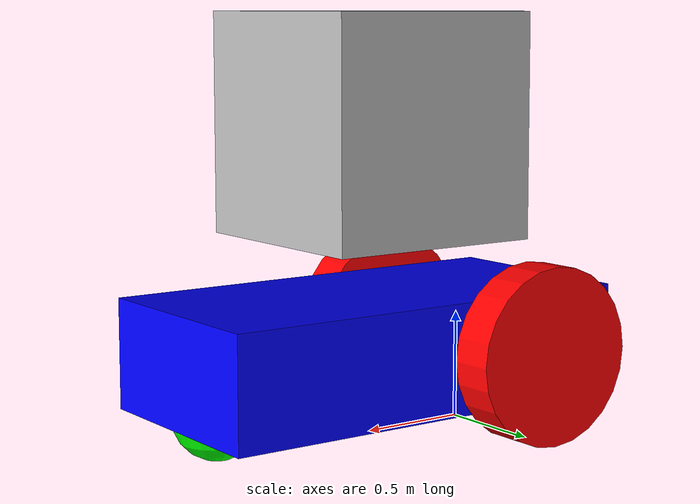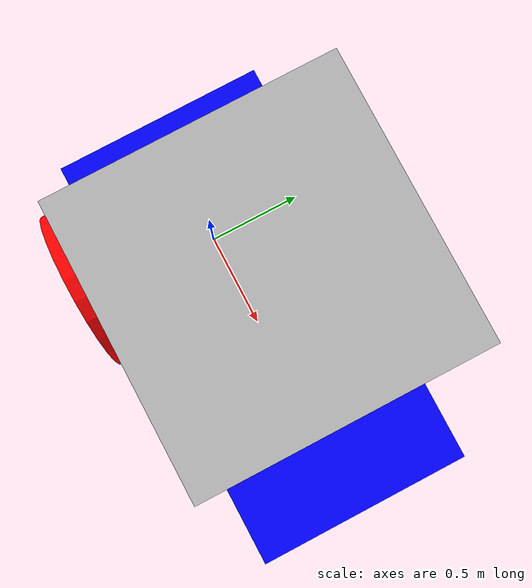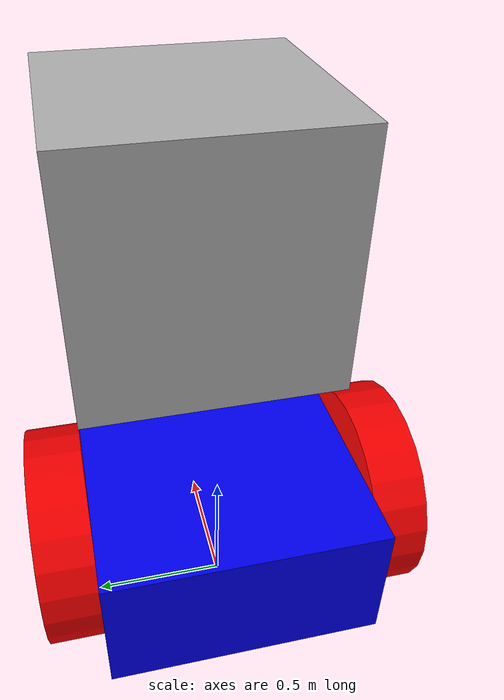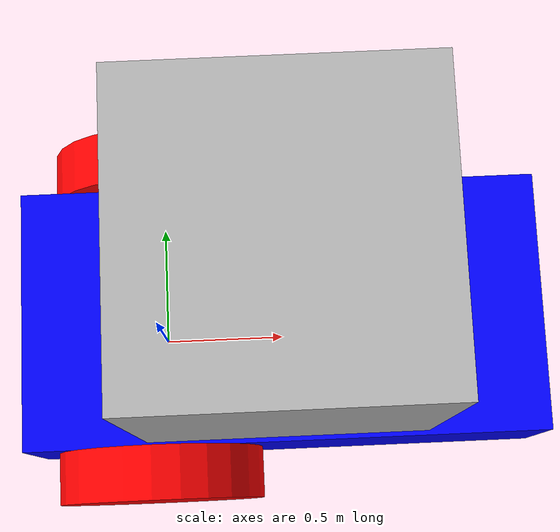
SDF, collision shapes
<sdf version="1.8">
            <model name='vehicle_blue' canonical_link='chassis'>
    	        <pose>0 0 0 0 0 0</pose>
	        <link name='chassis'>
                  <pose relative_to='__model__'>0.5 0 0.4 0 0 0</pose>
	      <inertial> <!--inertial properties of the link mass, inertia matix-->
                  <mass>1.14395</mass>
                  <inertia>
                      <ixx>0.095329</ixx>
                      <ixy>0</ixy>
                      <ixz>0</ixz>
                      <iyy>0.381317</iyy>
                      <iyz>0</iyz>
                      <izz>0.476646</izz>
                 </inertia>
              </inertial>
	      <visual name='visual'>
                  <geometry>
                      <box>
                          <size>2.0 1.0 0.5</size>
                      </box>
                  </geometry>
                  <!--let's add color to our link-->
                  <material>
                      <ambient>0.0 0.0 1.0 1</ambient>
                      <diffuse>0.0 0.0 1.0 1</diffuse>
                      <specular>0.0 0.0 1.0 1</specular>
                  </material>
              </visual>
	      <collision name='collision'>
                  <geometry>
                      <box>
                          <size>2.0 1.0 0.5</size>
                      </box>
                  </geometry>
              </collision>
           </link>
	   <link name='left_wheel'>
               <pose relative_to="chassis">-0.5 0.6 0 -1.5707 0 0</pose>
               <inertial>
                   <mass>1</mass>
                   <inertia>
                       <ixx>0.043333</ixx>
                       <ixy>0</ixy>
                       <ixz>0</ixz>
                       <iyy>0.043333</iyy>
                       <iyz>0</iyz>
                       <izz>0.08</izz>
                   </inertia>
	       </inertial>
               <visual name='visual'>
                   <geometry>
                       <cylinder>
                           <radius>0.4</radius>
                           <length>0.2</length>
                       </cylinder>
                   </geometry>
                   <material>
                       <ambient>1.0 0.0 0.0 1</ambient>
                       <diffuse>1.0 0.0 0.0 1</diffuse>
                       <specular>1.0 0.0 0.0 1</specular>
                   </material>
               </visual>
               <collision name='collision'>
                   <geometry>
                       <cylinder>
                           <radius>0.4</radius>
                           <length>0.2</length>
                       </cylinder>
                   </geometry>
               </collision>
           </link>
           <!--The same as left wheel but with different position-->
           <link name='right_wheel'>
	       <pose relative_to="chassis">-0.5 -0.6 0 -1.5707 0 0</pose> <!--angles are in radian-->
	       <inertial>
		   <mass>1</mass>
		   <inertia>
		       <ixx>0.043333</ixx>
		       <ixy>0</ixy>
		       <ixz>0</ixz>
		       <iyy>0.043333</iyy>
		       <iyz>0</iyz>
		       <izz>0.08</izz>
		   </inertia>
	       </inertial>
	       <visual name='visual'>
		   <geometry>
		       <cylinder>
			   <radius>0.4</radius>
			   <length>0.2</length>
		       </cylinder>
		   </geometry>
		   <material>
		       <ambient>1.0 0.0 0.0 1</ambient>
		       <diffuse>1.0 0.0 0.0 1</diffuse>
		       <specular>1.0 0.0 0.0 1</specular>
		   </material>
	       </visual>
	       <collision name='collision'>
		   <geometry>
		       <cylinder>
			   <radius>0.4</radius>
			   <length>0.2</length>
		       </cylinder>
		   </geometry>
	       </collision>
           </link>
           <frame name="caster_frame" attached_to='chassis'>
               <pose>0.8 0 -0.2 0 0 0</pose>
           </frame>
           <!--caster wheel-->
           <link name='caster'>
               <pose relative_to='caster_frame'/>
               <inertial>
                   <mass>1</mass>
                   <inertia>
                       <ixx>0.016</ixx>
		       <ixy>0</ixy>
		       <ixz>0</ixz>
		       <iyy>0.016</iyy>
			    <iyz>0</iyz>
			    <izz>0.016</izz>
			</inertia>
		    </inertial>
		    <visual name='visual'>
			<geometry>
			    <sphere>
				<radius>0.2</radius>
			    </sphere>
			</geometry>
			<material>
			    <ambient>0.0 1 0.0 1</ambient>
			    <diffuse>0.0 1 0.0 1</diffuse>
			    <specular>0.0 1 0.0 1</specular>
			</material>
		    </visual>
		    <collision name='collision'>
			<geometry>
			    <sphere>
				<radius>0.2</radius>
			    </sphere>
			</geometry>
		    </collision>
		</link>
		<joint name='left_wheel_joint' type='revolute'>
			<pose relative_to='left_wheel'/>
			<parent>chassis</parent>
			<child>left_wheel</child>
			<axis>
			<xyz expressed_in='__model__'>0 1 0</xyz> <!--can be defined as any frame or even arbitrary frames-->
			<limit>
			    <lower>-1.79769e+308</lower>    <!--negative infinity-->
			    <upper>1.79769e+308</upper>     <!--positive infinity-->
			</limit>
		    </axis>
		</joint>
	<joint name='right_wheel_joint' type='revolute'>
	    <pose relative_to='right_wheel'/>
	    <parent>chassis</parent>
	    <child>right_wheel</child>
	    <axis>
		<xyz expressed_in='__model__'>0 1 0</xyz>
		<limit>
		    <lower>-1.79769e+308</lower>    <!--negative infinity-->
		    <upper>1.79769e+308</upper>     <!--positive infinity-->
		</limit>
	    </axis>
	</joint>
	<joint name='caster_wheel' type='ball'>
	    <parent>chassis</parent>
	    <child>caster</child>
	</joint>
	<plugin
	    filename="libignition-gazebo-diff-drive-system.so"
	    name="ignition::gazebo::systems::DiffDrive">
	    <left_joint>left_wheel_joint</left_joint>
	    <right_joint>right_wheel_joint</right_joint>
	    <wheel_separation>1.2</wheel_separation>
	    <wheel_radius>0.4</wheel_radius>
	    <odom_publish_frequency>1</odom_publish_frequency>
	    <topic>cmd_vel</topic>
	</plugin>
        <link name='april_cube'>
	<pose relative_to='chassis'>0 0 1 0 0 0</pose>
            <inertial> <!--inertial properties of the link mass, inertia matix-->
                <mass>1</mass>
                <inertia>
                    <ixx>0.095329</ixx>
                    <ixy>0</ixy>
                    <ixz>0</ixz>
                    <iyy>0.381317</iyy>
                    <iyz>0</iyz>
                    <izz>0.476646</izz>
                </inertia>
            </inertial>
            <collision name='tag0_collision'>
                <geometry>
                    <box> 0.5 0.5 0.5</box>
                </geometry>
            </collision>
            <visual name="tag0_visual">
                <geometry>
                    <mesh>
                            <uri>file://models/tag0_cube/meshes/tag0_cube.dae</uri>
                        <scale> 0.5 0.5 0.5 </scale>
                    </mesh>
                </geometry>
            </visual>
        </link>

	<joint name='april_joint' type='fixed'>
		<parent>chassis</parent>
		<child>april_cube</child>
	</joint>
	</model>
	<plugin filename="libignition-gazebo-triggered-publisher-system.so"
		name="ignition::gazebo::systems::TriggeredPublisher">
	    <input type="ignition.msgs.Int32" topic="/keyboard/keypress">
		<match field="data">16777235</match>
	    </input>
	    <output type="ignition.msgs.Twist" topic="/cmd_vel">
		linear: {x: 0.5}, angular: {z: 0.0}
	    </output>
	</plugin>
	<!-- Moving Backward-->
	<plugin filename="libignition-gazebo-triggered-publisher-system.so"
		name="ignition::gazebo::systems::TriggeredPublisher">
	    <input type="ignition.msgs.Int32" topic="/keyboard/keypress">
		<match field="data">16777237</match>
	    </input>
	    <output type="ignition.msgs.Twist" topic="/cmd_vel">
		linear: {x: -0.5}, angular: {z: 0.0}
	    </output>
	</plugin>
	<!-- Moving Right-->
	<plugin filename="libignition-gazebo-triggered-publisher-system.so"
		name="ignition::gazebo::systems::TriggeredPublisher">
	    <input type="ignition.msgs.Int32" topic="/keyboard/keypress">
		<match field="data">16777236</match>
	    </input>
	    <output type="ignition.msgs.Twist" topic="/cmd_vel">
		linear: {x: 0.0}, angular: {z: -0.5}
	    </output>
	</plugin>
	<!-- Moving Left-->
	<plugin filename="libignition-gazebo-triggered-publisher-system.so"
		name="ignition::gazebo::systems::TriggeredPublisher">
	    <input type="ignition.msgs.Int32" topic="/keyboard/keypress">
		<match field="data">16777234</match>
	    </input>
	    <output type="ignition.msgs.Twist" topic="/cmd_vel">
		linear: {x: 0.0}, angular: {z: 0.5}
	    </output>
	</plugin>
</sdf>
